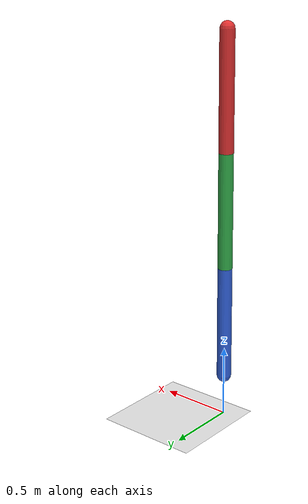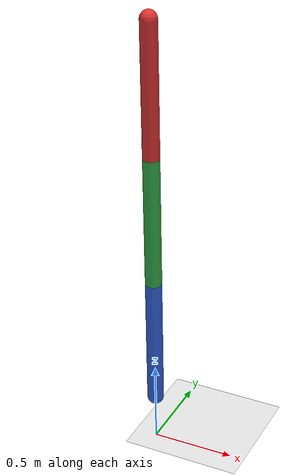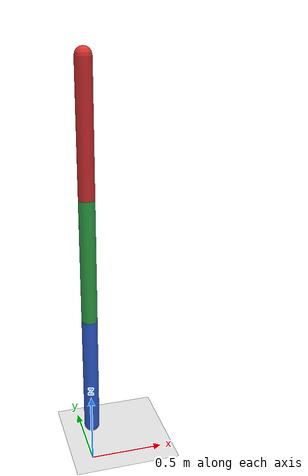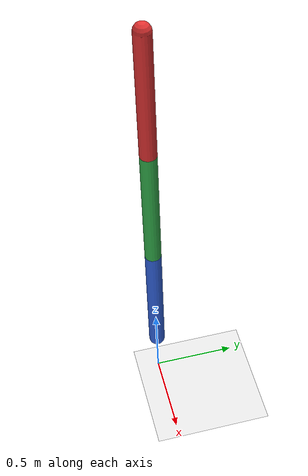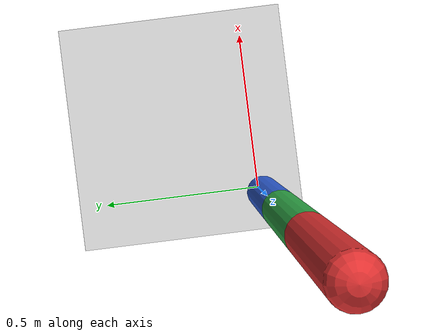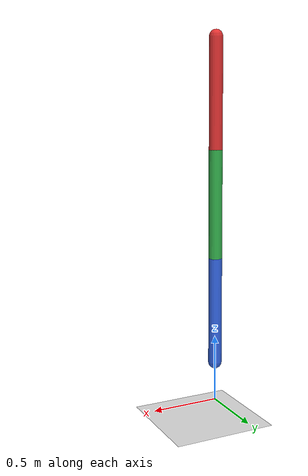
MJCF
<mujoco model="underactuated triple pendulum">
    <compiler angle="radian" autolimits="true"/>

    <option
        timestep="0.01"
        gravity="0 0 -9.81"
        integrator="RK4"
    />

    <visual>
        <headlight ambient="0.35 0.35 0.35" diffuse="0.7 0.7 0.7"/>
    </visual>

    <default>
        <joint axis="0 1 0" damping="0.03" frictionloss="0.002" armature="0.002"/>
        <geom type="capsule" size="0.05" mass="0.2"/>
        <site type="sphere" size="0.025"/>
    </default>

    <worldbody>
        <light pos="0 -2 5"/>
        <camera name="side" pos="0 -8 2.7" xyaxes="1 0 0 0 0 1"/>

        <geom
            name="floor"
            type="plane"
            size="4 4 0.1"
            mass="0"
            rgba="0.9 0.9 0.9 1"
        />

        <body name="link1" pos="0 0 2.7">
            <joint name="joint1" type="hinge"/>
            <geom
                name="rod1"
                fromto="0 0 0 0 0 -0.8"
                rgba="0.9 0.2 0.2 1"
            />
            <site name="link1_endpoint" pos="0 0 -0.8" rgba="1 0.8 0.1 1"/>

            <body name="link2" pos="0 0 -0.8">
                <joint name="joint2" type="hinge"/>
                <geom
                    name="rod2"
                    fromto="0 0 0 0 0 -0.8"
                    rgba="0.2 0.7 0.3 1"
                />
                <site name="link2_endpoint" pos="0 0 -0.8" rgba="1 0.8 0.1 1"/>

                <body name="link3" pos="0 0 -0.8">
                    <joint name="joint3" type="hinge"/>
                    <geom
                        name="rod3"
                        fromto="0 0 0 0 0 -0.8"
                        rgba="0.2 0.4 0.9 1"
                    />
                    <site name="link3_endpoint" pos="0 0 -0.8" rgba="1 0.8 0.1 1"/>
                </body>
            </body>
        </body>
    </worldbody>

    <actuator>
        <!-- The passive joints intentionally have no actuator. -->
        <motor
            name="base_motor"
            joint="joint1"
            gear="1"
            ctrllimited="true"
            ctrlrange="-2 2"
            forcelimited="true"
            forcerange="-2 2"
        />
    </actuator>
</mujoco>
